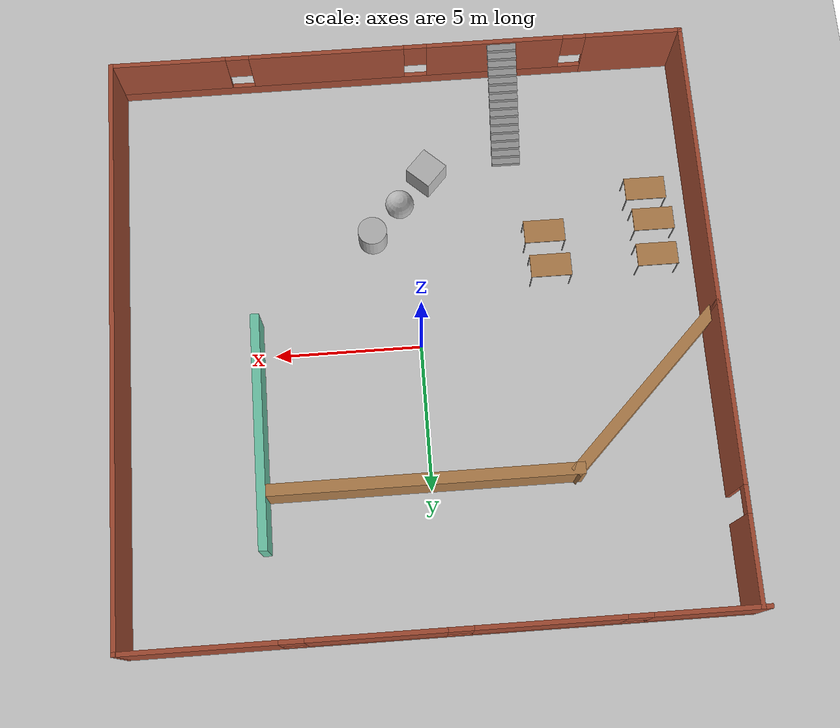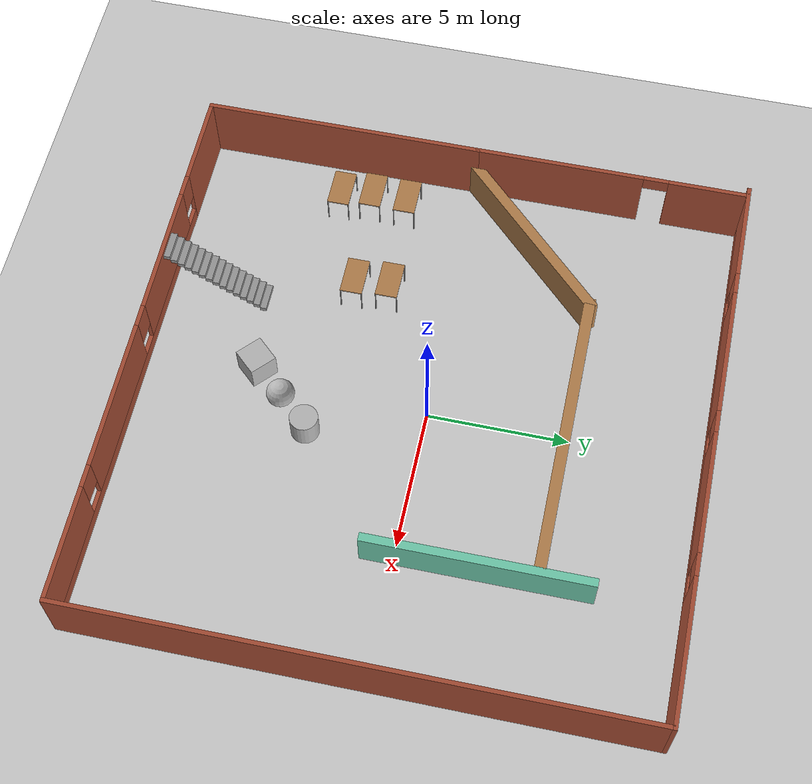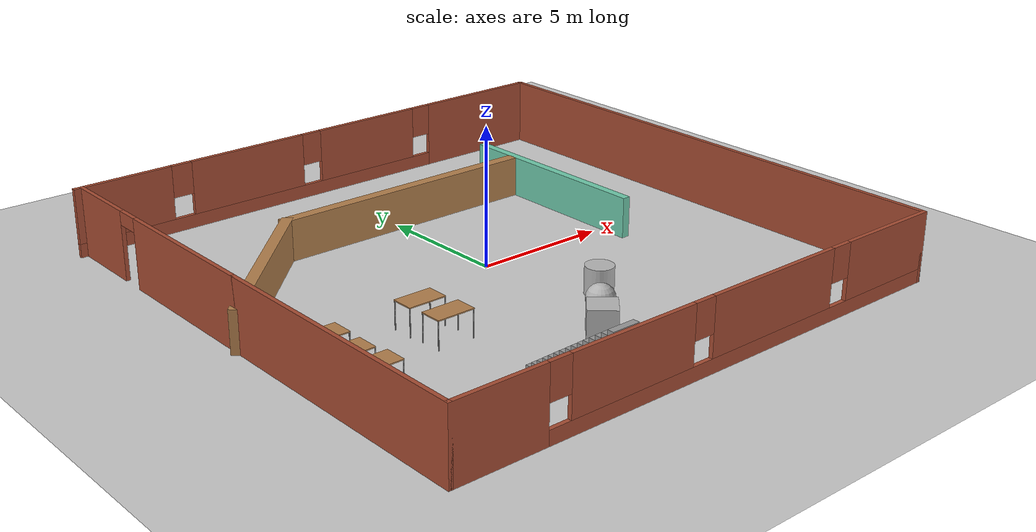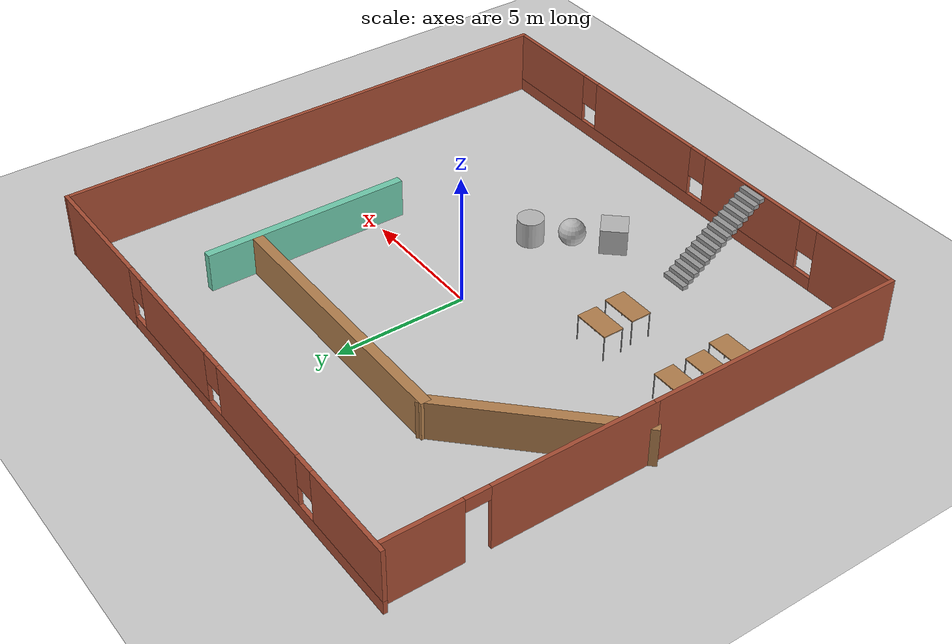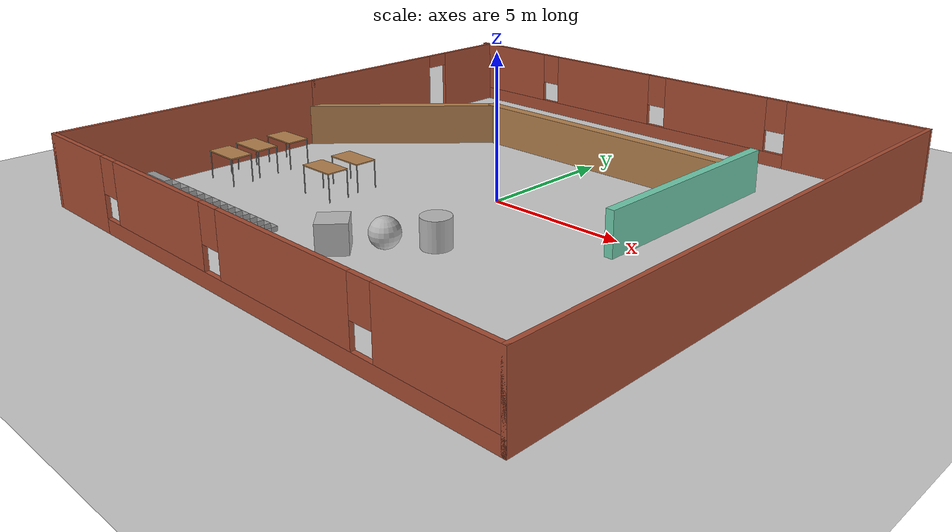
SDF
<sdf version="1.6">
 <world name="default">
  <light name="sun" type="directional">
   <pose>0 0 10 0 -0 0</pose>
   <diffuse>0.8 0.8 0.8 1</diffuse>
   <specular>0.1 0.1 0.1 1</specular>
   <attenuation>
    <range>1000</range>
    <constant>0.9</constant>
    <linear>0.01</linear>
    <quadratic>0.001</quadratic>
   </attenuation>
   <direction>-0.5 0.5 -1</direction>
  </light>
  <model name="ground_plane">
   <static>1</static>
   <link name="link">
    <collision name="collision">
     <geometry><plane><normal>0 0 1</normal><size>100 100</size></plane></geometry>
     <surface><friction><ode><mu>100</mu><mu2>50</mu2></ode></friction></surface>
    </collision>
    <visual name="visual">
     <cast_shadows>0</cast_shadows>
     <geometry><plane><normal>0 0 1</normal><size>100 100</size></plane></geometry>
     <material>
      <script><uri>file://media/materials/scripts/gazebo.material</uri><name>Gazebo/Grey</name></script>
     </material>
    </visual>
   </link>
  </model>
  <gravity>0 0 -9.8</gravity>
  <magnetic_field>6e-06 2.3e-05 -4.2e-05</magnetic_field>
  <atmosphere type="adiabatic"/>
  <physics name="default_physics" default="0" type="ode">
   <max_step_size>0.001</max_step_size>
   <real_time_factor>1</real_time_factor>
   <real_time_update_rate>1000</real_time_update_rate>
  </physics>
  <scene><ambient>0.4 0.4 0.4 1</ambient><background>0.7 0.7 0.7 1</background><shadows>1</shadows></scene>
  <spherical_coordinates>
   <surface_model>EARTH_WGS84</surface_model>
   <latitude_deg>0</latitude_deg>
   <longitude_deg>0</longitude_deg>
   <elevation>0</elevation>
   <heading_deg>0</heading_deg>
  </spherical_coordinates>
  <model name="my_house">
   <pose>0.008924 -0.236598 0 0 -0 0</pose>
   <link name="Stairs_1">
    <visual name="Stairs_1_Visual_0">
     <pose>-3.52265 -6.42087 0.083333 0 -0 0</pose>
     <geometry><box><size>1 0.233333 0.166667</size></box></geometry>
     <material>
      <script><uri>file://media/materials/scripts/gazebo.material</uri><name>Gazebo/Grey</name></script>
      <ambient>1 1 1 1</ambient>
     </material>
     <meta><layer>0</layer></meta>
    </visual>
    <collision name="Stairs_1_Collision_0">
     <geometry><box><size>1 0.233333 0.166667</size></box></geometry>
     <pose>-3.52265 -6.42087 0.083333 0 -0 0</pose>
    </collision>
    <visual name="Stairs_1_Visual_1">
     <pose>-3.52265 -6.6542 0.25 0 -0 0</pose>
     <geometry><box><size>1 0.233333 0.166667</size></box></geometry>
     <material>
      <script><uri>file://media/materials/scripts/gazebo.material</uri><name>Gazebo/Grey</name></script>
      <ambient>1 1 1 1</ambient>
     </material>
     <meta><layer>0</layer></meta>
    </visual>
    <collision name="Stairs_1_Collision_1">
     <geometry><box><size>1 0.233333 0.166667</size></box></geometry>
     <pose>-3.52265 -6.6542 0.25 0 -0 0</pose>
    </collision>
    <visual name="Stairs_1_Visual_2">
     <pose>-3.52265 -6.88753 0.416667 0 -0 0</pose>
     <geometry><box><size>1 0.233333 0.166667</size></box></geometry>
     <material>
      <script><uri>file://media/materials/scripts/gazebo.material</uri><name>Gazebo/Grey</name></script>
      <ambient>1 1 1 1</ambient>
     </material>
     <meta><layer>0</layer></meta>
    </visual>
    <collision name="Stairs_1_Collision_2">
     <geometry><box><size>1 0.233333 0.166667</size></box></geometry>
     <pose>-3.52265 -6.88753 0.416667 0 -0 0</pose>
    </collision>
    <visual name="Stairs_1_Visual_3">
     <pose>-3.52265 -7.12087 0.583333 0 -0 0</pose>
     <geometry><box><size>1 0.233333 0.166667</size></box></geometry>
     <material>
      <script><uri>file://media/materials/scripts/gazebo.material</uri><name>Gazebo/Grey</name></script>
      <ambient>1 1 1 1</ambient>
     </material>
     <meta><layer>0</layer></meta>
    </visual>
    <collision name="Stairs_1_Collision_3">
     <geometry><box><size>1 0.233333 0.166667</size></box></geometry>
     <pose>-3.52265 -7.12087 0.583333 0 -0 0</pose>
    </collision>
    <visual name="Stairs_1_Visual_4">
     <pose>-3.52265 -7.3542 0.75 0 -0 0</pose>
     <geometry><box><size>1 0.233333 0.166667</size></box></geometry>
     <material>
      <script><uri>file://media/materials/scripts/gazebo.material</uri><name>Gazebo/Grey</name></script>
      <ambient>1 1 1 1</ambient>
     </material>
     <meta><layer>0</layer></meta>
    </visual>
    <collision name="Stairs_1_Collision_4">
     <geometry><box><size>1 0.233333 0.166667</size></box></geometry>
     <pose>-3.52265 -7.3542 0.75 0 -0 0</pose>
    </collision>
    <visual name="Stairs_1_Visual_5">
     <pose>-3.52265 -7.58753 0.916667 0 -0 0</pose>
     <geometry><box><size>1 0.233333 0.166667</size></box></geometry>
     <material>
      <script><uri>file://media/materials/scripts/gazebo.material</uri><name>Gazebo/Grey</name></script>
      <ambient>1 1 1 1</ambient>
     </material>
     <meta><layer>0</layer></meta>
    </visual>
    <collision name="Stairs_1_Collision_5">
     <geometry><box><size>1 0.233333 0.166667</size></box></geometry>
     <pose>-3.52265 -7.58753 0.916667 0 -0 0</pose>
    </collision>
    <visual name="Stairs_1_Visual_6">
     <pose>-3.52265 -7.82087 1.08333 0 -0 0</pose>
     <geometry><box><size>1 0.233333 0.166667</size></box></geometry>
     <material>
      <script><uri>file://media/materials/scripts/gazebo.material</uri><name>Gazebo/Grey</name></script>
      <ambient>1 1 1 1</ambient>
     </material>
     <meta><layer>0</layer></meta>
    </visual>
    <collision name="Stairs_1_Collision_6">
     <geometry><box><size>1 0.233333 0.166667</size></box></geometry>
     <pose>-3.52265 -7.82087 1.08333 0 -0 0</pose>
    </collision>
    <visual name="Stairs_1_Visual_7">
     <pose>-3.52265 -8.0542 1.25 0 -0 0</pose>
     <geometry><box><size>1 0.233333 0.166667</size></box></geometry>
     <material>
      <script><uri>file://media/materials/scripts/gazebo.material</uri><name>Gazebo/Grey</name></script>
      <ambient>1 1 1 1</ambient>
     </material>
     <meta><layer>0</layer></meta>
    </visual>
    <collision name="Stairs_1_Collision_7">
     <geometry><box><size>1 0.233333 0.166667</size></box></geometry>
     <pose>-3.52265 -8.0542 1.25 0 -0 0</pose>
    </collision>
    <visual name="Stairs_1_Visual_8">
     <pose>-3.52265 -8.28753 1.41667 0 -0 0</pose>
     <geometry><box><size>1 0.233333 0.166667</size></box></geometry>
     <material>
      <script><uri>file://media/materials/scripts/gazebo.material</uri><name>Gazebo/Grey</name></script>
      <ambient>1 1 1 1</ambient>
     </material>
     <meta><layer>0</layer></meta>
    </visual>
    <collision name="Stairs_1_Collision_8">
     <geometry><box><size>1 0.233333 0.166667</size></box></geometry>
     <pose>-3.52265 -8.28753 1.41667 0 -0 0</pose>
    </collision>
    <visual name="Stairs_1_Visual_9">
     <pose>-3.52265 -8.52087 1.58333 0 -0 0</pose>
     <geometry><box><size>1 0.233333 0.166667</size></box></geometry>
     <material>
      <script><uri>file://media/materials/scripts/gazebo.material</uri><name>Gazebo/Grey</name></script>
      <ambient>1 1 1 1</ambient>
     </material>
     <meta><layer>0</layer></meta>
    </visual>
    <collision name="Stairs_1_Collision_9">
     <geometry><box><size>1 0.233333 0.166667</size></box></geometry>
     <pose>-3.52265 -8.52087 1.58333 0 -0 0</pose>
    </collision>
    <visual name="Stairs_1_Visual_10">
     <pose>-3.52265 -8.7542 1.75 0 -0 0</pose>
     <geometry><box><size>1 0.233333 0.166667</size></box></geometry>
     <material>
      <script><uri>file://media/materials/scripts/gazebo.material</uri><name>Gazebo/Grey</name></script>
      <ambient>1 1 1 1</ambient>
     </material>
     <meta><layer>0</layer></meta>
    </visual>
    <collision name="Stairs_1_Collision_10">
     <geometry><box><size>1 0.233333 0.166667</size></box></geometry>
     <pose>-3.52265 -8.7542 1.75 0 -0 0</pose>
    </collision>
    <visual name="Stairs_1_Visual_11">
     <pose>-3.52265 -8.98753 1.91667 0 -0 0</pose>
     <geometry><box><size>1 0.233333 0.166667</size></box></geometry>
     <material>
      <script><uri>file://media/materials/scripts/gazebo.material</uri><name>Gazebo/Grey</name></script>
      <ambient>1 1 1 1</ambient>
     </material>
     <meta><layer>0</layer></meta>
    </visual>
    <collision name="Stairs_1_Collision_11">
     <geometry><box><size>1 0.233333 0.166667</size></box></geometry>
     <pose>-3.52265 -8.98753 1.91667 0 -0 0</pose>
    </collision>
    <visual name="Stairs_1_Visual_12">
     <pose>-3.52265 -9.22086 2.08333 0 -0 0</pose>
     <geometry><box><size>1 0.233333 0.166667</size></box></geometry>
     <material>
      <script><uri>file://media/materials/scripts/gazebo.material</uri><name>Gazebo/Grey</name></script>
      <ambient>1 1 1 1</ambient>
     </material>
     <meta><layer>0</layer></meta>
    </visual>
    <collision name="Stairs_1_Collision_12">
     <geometry><box><size>1 0.233333 0.166667</size></box></geometry>
     <pose>-3.52265 -9.22086 2.08333 0 -0 0</pose>
    </collision>
    <visual name="Stairs_1_Visual_13">
     <pose>-3.52265 -9.4542 2.25 0 -0 0</pose>
     <geometry><box><size>1 0.233333 0.166667</size></box></geometry>
     <material>
      <script><uri>file://media/materials/scripts/gazebo.material</uri><name>Gazebo/Grey</name></script>
      <ambient>1 1 1 1</ambient>
     </material>
     <meta><layer>0</layer></meta>
    </visual>
    <collision name="Stairs_1_Collision_13">
     <geometry><box><size>1 0.233333 0.166667</size></box></geometry>
     <pose>-3.52265 -9.4542 2.25 0 -0 0</pose>
    </collision>
    <visual name="Stairs_1_Visual_14">
     <pose>-3.52265 -9.68753 2.41667 0 -0 0</pose>
     <geometry><box><size>1 0.233333 0.166667</size></box></geometry>
     <material>
      <script><uri>file://media/materials/scripts/gazebo.material</uri><name>Gazebo/Grey</name></script>
      <ambient>1 1 1 1</ambient>
     </material>
     <meta><layer>0</layer></meta>
    </visual>
    <collision name="Stairs_1_Collision_14">
     <geometry><box><size>1 0.233333 0.166667</size></box></geometry>
     <pose>-3.52265 -9.68753 2.41667 0 -0 0</pose>
    </collision>
   </link>
   <link name="Wall_14">
    <collision name="Wall_14_Collision">
     <geometry><box><size>20 0.15 2.5</size></box></geometry>
     <pose>0 0 1.25 0 -0 0</pose>
    </collision>
    <visual name="Wall_14_Visual">
     <pose>0 0 1.25 0 -0 0</pose>
     <geometry><box><size>20 0.15 2.5</size></box></geometry>
     <material>
      <script><uri>file://media/materials/scripts/gazebo.material</uri><name>Gazebo/Bricks</name></script>
      <ambient>1 1 1 1</ambient>
     </material>
     <meta><layer>0</layer></meta>
    </visual>
    <pose>10.05 0 0 0 -0 1.5708</pose>
   </link>
   <link name="Wall_15">
    <pose>-1e-06 9.925 0 0 -0 3.14159</pose>
    <visual name="Wall_15_Visual_0">
     <pose>-7.59411 0 1.25 0 -0 0</pose>
     <geometry><box><size>5.06177 0.15 2.5</size></box></geometry>
     <material>
      <script><uri>file://media/materials/scripts/gazebo.material</uri><name>Gazebo/Bricks</name></script>
      <ambient>1 1 1 1</ambient>
     </material>
     <meta><layer>0</layer></meta>
    </visual>
    <collision name="Wall_15_Collision_0">
     <geometry><box><size>5.06177 0.15 2.5</size></box></geometry>
     <pose>-7.59411 0 1.25 0 -0 0</pose>
    </collision>
    <visual name="Wall_15_Visual_1">
     <pose>2.53089 0 0.25 0 -0 0</pose>
     <geometry><box><size>15.1882 0.15 0.5</size></box></geometry>
     <material>
      <script><uri>file://media/materials/scripts/gazebo.material</uri><name>Gazebo/Bricks</name></script>
      <ambient>1 1 1 1</ambient>
     </material>
     <meta><layer>0</layer></meta>
    </visual>
    <collision name="Wall_15_Collision_1">
     <geometry><box><size>15.1882 0.15 0.5</size></box></geometry>
     <pose>2.53089 0 0.25 0 -0 0</pose>
    </collision>
    <visual name="Wall_15_Visual_2">
     <pose>-2.06836 0 1.5 0 -0 0</pose>
     <geometry><box><size>4.38974 0.15 2</size></box></geometry>
     <material>
      <script><uri>file://media/materials/scripts/gazebo.material</uri><name>Gazebo/Bricks</name></script>
      <ambient>1 1 1 1</ambient>
     </material>
     <meta><layer>0</layer></meta>
    </visual>
    <collision name="Wall_15_Collision_2">
     <geometry><box><size>4.38974 0.15 2</size></box></geometry>
     <pose>-2.06836 0 1.5 0 -0 0</pose>
    </collision>
    <visual name="Wall_15_Visual_3">
     <pose>3.28189 0 1.5 0 -0 0</pose>
     <geometry><box><size>4.71076 0.15 2</size></box></geometry>
     <material>
      <script><uri>file://media/materials/scripts/gazebo.material</uri><name>Gazebo/Bricks</name></script>
      <ambient>1 1 1 1</ambient>
     </material>
     <meta><layer>0</layer></meta>
    </visual>
    <collision name="Wall_15_Collision_3">
     <geometry><box><size>4.71076 0.15 2</size></box></geometry>
     <pose>3.28189 0 1.5 0 -0 0</pose>
    </collision>
    <visual name="Wall_15_Visual_4">
     <pose>8.28114 0 1.5 0 -0 0</pose>
     <geometry><box><size>3.68773 0.15 2</size></box></geometry>
     <material>
      <script><uri>file://media/materials/scripts/gazebo.material</uri><name>Gazebo/Bricks</name></script>
      <ambient>1 1 1 1</ambient>
     </material>
     <meta><layer>0</layer></meta>
    </visual>
    <collision name="Wall_15_Collision_4">
     <geometry><box><size>3.68773 0.15 2</size></box></geometry>
     <pose>8.28114 0 1.5 0 -0 0</pose>
    </collision>
    <visual name="Wall_15_Visual_5">
     <pose>-4.66323 0 1.9 0 -0 0</pose>
     <geometry><box><size>0.8 0.15 1.2</size></box></geometry>
     <material>
      <script><uri>file://media/materials/scripts/gazebo.material</uri><name>Gazebo/Bricks</name></script>
      <ambient>1 1 1 1</ambient>
     </material>
     <meta><layer>0</layer></meta>
    </visual>
    <collision name="Wall_15_Collision_5">
     <geometry><box><size>0.8 0.15 1.2</size></box></geometry>
     <pose>-4.66323 0 1.9 0 -0 0</pose>
    </collision>
    <visual name="Wall_15_Visual_6">
     <pose>0.526515 0 1.9 0 -0 0</pose>
     <geometry><box><size>0.8 0.15 1.2</size></box></geometry>
     <material>
      <script><uri>file://media/materials/scripts/gazebo.material</uri><name>Gazebo/Bricks</name></script>
      <ambient>1 1 1 1</ambient>
     </material>
     <meta><layer>0</layer></meta>
    </visual>
    <collision name="Wall_15_Collision_6">
     <geometry><box><size>0.8 0.15 1.2</size></box></geometry>
     <pose>0.526515 0 1.9 0 -0 0</pose>
    </collision>
    <visual name="Wall_15_Visual_7">
     <pose>6.03727 0 1.9 0 -0 0</pose>
     <geometry><box><size>0.8 0.15 1.2</size></box></geometry>
     <material>
      <script><uri>file://media/materials/scripts/gazebo.material</uri><name>Gazebo/Bricks</name></script>
      <ambient>1 1 1 1</ambient>
     </material>
     <meta><layer>0</layer></meta>
    </visual>
    <collision name="Wall_15_Collision_7">
     <geometry><box><size>0.8 0.15 1.2</size></box></geometry>
     <pose>6.03727 0 1.9 0 -0 0</pose>
    </collision>
   </link>
   <link name="Wall_17">
    <pose>-9.8 5 0 0 -0 1.5708</pose>
    <visual name="Wall_17_Visual_0">
     <pose>-1.92226 0 1.25 0 -0 0</pose>
     <geometry><box><size>6.15549 0.15 2.5</size></box></geometry>
     <material>
      <script><uri>file://media/materials/scripts/gazebo.material</uri><name>Gazebo/Bricks</name></script>
      <ambient>1 1 1 1</ambient>
     </material>
     <meta><layer>0</layer></meta>
    </visual>
    <collision name="Wall_17_Collision_0">
     <geometry><box><size>6.15549 0.15 2.5</size></box></geometry>
     <pose>-1.92226 0 1.25 0 -0 0</pose>
    </collision>
    <visual name="Wall_17_Visual_1">
     <pose>3.52774 0 1.25 0 -0 0</pose>
     <geometry><box><size>2.94451 0.15 2.5</size></box></geometry>
     <material>
      <script><uri>file://media/materials/scripts/gazebo.material</uri><name>Gazebo/Bricks</name></script>
      <ambient>1 1 1 1</ambient>
     </material>
     <meta><layer>0</layer></meta>
    </visual>
    <collision name="Wall_17_Collision_1">
     <geometry><box><size>2.94451 0.15 2.5</size></box></geometry>
     <pose>3.52774 0 1.25 0 -0 0</pose>
    </collision>
    <visual name="Wall_17_Visual_2">
     <pose>1.60549 0 2.25 0 -0 0</pose>
     <geometry><box><size>0.9 0.15 0.5</size></box></geometry>
     <material>
      <script><uri>file://media/materials/scripts/gazebo.material</uri><name>Gazebo/Bricks</name></script>
      <ambient>1 1 1 1</ambient>
     </material>
     <meta><layer>0</layer></meta>
    </visual>
    <collision name="Wall_17_Collision_2">
     <geometry><box><size>0.9 0.15 0.5</size></box></geometry>
     <pose>1.60549 0 2.25 0 -0 0</pose>
    </collision>
   </link>
   <link name="Wall_21">
    <collision name="Wall_21_Collision">
     <geometry><box><size>7.9 0.3 1.5</size></box></geometry>
     <pose>0 0 0.75 0 -0 0</pose>
    </collision>
    <visual name="Wall_21_Visual">
     <pose>0 0 0.75 0 -0 0</pose>
     <geometry><box><size>7.9 0.3 1.5</size></box></geometry>
     <material>
      <script><uri>file://media/materials/scripts/gazebo.material</uri><name>Gazebo/Grey</name></script>
      <ambient>0.435294 0.796078 0.67451 1</ambient>
     </material>
     <meta><layer>0</layer></meta>
    </visual>
    <pose>5.522 3.051 0 0 0 -1.5708</pose>
   </link>
   <link name="Wall_3">
    <collision name="Wall_3_Collision">
     <geometry><box><size>10.4 0.4 1.5</size></box></geometry>
     <pose>0 0 0.75 0 -0 0</pose>
    </collision>
    <visual name="Wall_3_Visual">
     <pose>0 0 0.75 0 -0 0</pose>
     <geometry><box><size>10.4 0.4 1.5</size></box></geometry>
     <material>
      <script><uri>file://media/materials/scripts/gazebo.material</uri><name>Gazebo/Wood</name></script>
      <ambient>1 1 1 1</ambient>
     </material>
     <meta><layer>0</layer></meta>
    </visual>
    <pose>0.199999 5.075 0 0 -0 3.14159</pose>
   </link>
   <link name="Wall_5">
    <collision name="Wall_5_Collision">
     <geometry><box><size>7.47107 0.4 1.5</size></box></geometry>
     <pose>0 0 0.75 0 -0 0</pose>
    </collision>
    <visual name="Wall_5_Visual">
     <pose>0 0 0.75 0 -0 0</pose>
     <geometry><box><size>7.47107 0.4 1.5</size></box></geometry>
     <material>
      <script><uri>file://media/materials/scripts/gazebo.material</uri><name>Gazebo/Wood</name></script>
      <ambient>1 1 1 1</ambient>
     </material>
     <meta><layer>0</layer></meta>
    </visual>
    <pose>-7.3 2.575 0 0 0 -2.35619</pose>
   </link>
   <link name="Wall_7">
    <collision name="Wall_7_Collision">
     <geometry><box><size>10.15 0.15 2.5</size></box></geometry>
     <pose>0 0 1.25 0 -0 0</pose>
    </collision>
    <visual name="Wall_7_Visual">
     <pose>0 0 1.25 0 -0 0</pose>
     <geometry><box><size>10.15 0.15 2.5</size></box></geometry>
     <material>
      <script><uri>file://media/materials/scripts/gazebo.material</uri><name>Gazebo/Bricks</name></script>
      <ambient>1 1 1 1</ambient>
     </material>
     <meta><layer>0</layer></meta>
    </visual>
    <pose>-9.8 -4.925 0 0 0 -1.5708</pose>
   </link>
   <link name="Wall_9">
    <pose>0.124999 -9.925 0 0 -0 0</pose>
    <visual name="Wall_9_Visual_0">
     <pose>-8.30789 0 1.25 0 -0 0</pose>
     <geometry><box><size>3.38422 0.15 2.5</size></box></geometry>
     <material>
      <script><uri>file://media/materials/scripts/gazebo.material</uri><name>Gazebo/Bricks</name></script>
      <ambient>1 1 1 1</ambient>
     </material>
     <meta><layer>0</layer></meta>
    </visual>
    <collision name="Wall_9_Collision_0">
     <geometry><box><size>3.38422 0.15 2.5</size></box></geometry>
     <pose>-8.30789 0 1.25 0 -0 0</pose>
    </collision>
    <visual name="Wall_9_Visual_1">
     <pose>1.69211 0 0.25 0 -0 0</pose>
     <geometry><box><size>16.6158 0.15 0.5</size></box></geometry>
     <material>
      <script><uri>file://media/materials/scripts/gazebo.material</uri><name>Gazebo/Bricks</name></script>
      <ambient>1 1 1 1</ambient>
     </material>
     <meta><layer>0</layer></meta>
    </visual>
    <collision name="Wall_9_Collision_1">
     <geometry><box><size>16.6158 0.15 0.5</size></box></geometry>
     <pose>1.69211 0 0.25 0 -0 0</pose>
    </collision>
    <visual name="Wall_9_Visual_2">
     <pose>-3.43364 0 1.5 0 -0 0</pose>
     <geometry><box><size>4.76426 0.15 2</size></box></geometry>
     <material>
      <script><uri>file://media/materials/scripts/gazebo.material</uri><name>Gazebo/Bricks</name></script>
      <ambient>1 1 1 1</ambient>
     </material>
     <meta><layer>0</layer></meta>
    </visual>
    <collision name="Wall_9_Collision_2">
     <geometry><box><size>4.76426 0.15 2</size></box></geometry>
     <pose>-3.43364 0 1.5 0 -0 0</pose>
    </collision>
    <visual name="Wall_9_Visual_3">
     <pose>2.45163 0 1.5 0 -0 0</pose>
     <geometry><box><size>5.40629 0.15 2</size></box></geometry>
     <material>
      <script><uri>file://media/materials/scripts/gazebo.material</uri><name>Gazebo/Bricks</name></script>
      <ambient>1 1 1 1</ambient>
     </material>
     <meta><layer>0</layer></meta>
    </visual>
    <collision name="Wall_9_Collision_3">
     <geometry><box><size>5.40629 0.15 2</size></box></geometry>
     <pose>2.45163 0 1.5 0 -0 0</pose>
    </collision>
    <visual name="Wall_9_Visual_4">
     <pose>7.97739 0 1.5 0 -0 0</pose>
     <geometry><box><size>4.04523 0.15 2</size></box></geometry>
     <material>
      <script><uri>file://media/materials/scripts/gazebo.material</uri><name>Gazebo/Bricks</name></script>
      <ambient>1 1 1 1</ambient>
     </material>
     <meta><layer>0</layer></meta>
    </visual>
    <collision name="Wall_9_Collision_4">
     <geometry><box><size>4.04523 0.15 2</size></box></geometry>
     <pose>7.97739 0 1.5 0 -0 0</pose>
    </collision>
    <visual name="Wall_9_Visual_5">
     <pose>-6.21577 0 1.9 0 -0 0</pose>
     <geometry><box><size>0.8 0.15 1.2</size></box></geometry>
     <material>
      <script><uri>file://media/materials/scripts/gazebo.material</uri><name>Gazebo/Bricks</name></script>
      <ambient>1 1 1 1</ambient>
     </material>
     <meta><layer>0</layer></meta>
    </visual>
    <collision name="Wall_9_Collision_5">
     <geometry><box><size>0.8 0.15 1.2</size></box></geometry>
     <pose>-6.21577 0 1.9 0 -0 0</pose>
    </collision>
    <visual name="Wall_9_Visual_6">
     <pose>-0.651515 0 1.9 0 -0 0</pose>
     <geometry><box><size>0.8 0.15 1.2</size></box></geometry>
     <material>
      <script><uri>file://media/materials/scripts/gazebo.material</uri><name>Gazebo/Bricks</name></script>
      <ambient>1 1 1 1</ambient>
     </material>
     <meta><layer>0</layer></meta>
    </visual>
    <collision name="Wall_9_Collision_6">
     <geometry><box><size>0.8 0.15 1.2</size></box></geometry>
     <pose>-0.651515 0 1.9 0 -0 0</pose>
    </collision>
    <visual name="Wall_9_Visual_7">
     <pose>5.55478 0 1.9 0 -0 0</pose>
     <geometry><box><size>0.8 0.15 1.2</size></box></geometry>
     <material>
      <script><uri>file://media/materials/scripts/gazebo.material</uri><name>Gazebo/Bricks</name></script>
      <ambient>1 1 1 1</ambient>
     </material>
     <meta><layer>0</layer></meta>
    </visual>
    <collision name="Wall_9_Collision_7">
     <geometry><box><size>0.8 0.15 1.2</size></box></geometry>
     <pose>5.55478 0 1.9 0 -0 0</pose>
    </collision>
   </link>
   <static>1</static>
  </model>
  <model name="textured_shapes">
   <pose>0.395897 -5.11976 0.5 0 0 -0.742374</pose>
   <link name="box">
    <pose>0 -1.5 0 0 -0 0</pose>
    <collision name="collision"><geometry><box><size>1 1 1</size></box></geometry></collision>
    <visual name="visual">
     <geometry><box><size>1 1 1</size></box></geometry>
     <material>
      <script>
       <uri>model://textured_shapes/materials/scripts</uri>
       <uri>model://textured_shapes/materials/textures</uri>
       <name>TexturedShape/Squares</name>
      </script>
     </material>
    </visual>
    <inertial>
     <inertia><ixx>1</ixx><ixy>0</ixy><ixz>0</ixz><iyy>1</iyy><iyz>0</iyz><izz>1</izz></inertia>
     <mass>1</mass>
    </inertial>
   </link>
   <link name="sphere">
    <collision name="collision"><geometry><sphere><radius>0.5</radius></sphere></geometry></collision>
    <visual name="visual">
     <geometry><sphere><radius>0.5</radius></sphere></geometry>
     <material>
      <script>
       <uri>model://textured_shapes/materials/scripts</uri>
       <uri>model://textured_shapes/materials/textures</uri>
       <name>TexturedShape/Squares</name>
      </script>
     </material>
    </visual>
    <inertial>
     <inertia><ixx>1</ixx><ixy>0</ixy><ixz>0</ixz><iyy>1</iyy><iyz>0</iyz><izz>1</izz></inertia>
     <mass>1</mass>
    </inertial>
   </link>
   <link name="cylinder">
    <pose>0 1.5 0 0 -0 0</pose>
    <collision name="collision">
     <geometry><cylinder><radius>0.5</radius><length>1</length></cylinder></geometry>
    </collision>
    <visual name="visual">
     <geometry><cylinder><radius>0.5</radius><length>1</length></cylinder></geometry>
     <material>
      <script>
       <uri>model://textured_shapes/materials/scripts</uri>
       <uri>model://textured_shapes/materials/textures</uri>
       <name>TexturedShape/Squares</name>
      </script>
     </material>
    </visual>
    <inertial>
     <inertia><ixx>1</ixx><ixy>0</ixy><ixz>0</ixz><iyy>1</iyy><iyz>0</iyz><izz>1</izz></inertia>
     <mass>1</mass>
    </inertial>
   </link>
  </model>
  <model name="table">
   <static>0</static>
   <link name="link">
    <collision name="surface">
     <pose>0 0 1 0 -0 0</pose>
     <geometry><box><size>1.5 0.8 0.03</size></box></geometry>
     <surface><friction><ode><mu>0.6</mu><mu2>0.6</mu2></ode></friction></surface>
    </collision>
    <visual name="visual1">
     <pose>0 0 1 0 -0 0</pose>
     <geometry><box><size>1.4 0.8 0.04</size></box></geometry>
     <material>
      <script><uri>file://media/materials/scripts/gazebo.material</uri><name>Gazebo/Wood</name></script>
     </material>
    </visual>
    <collision name="front_left_leg">
     <pose>0.68 0.38 0.5 0 -0 0</pose>
     <geometry><cylinder><radius>0.02</radius><length>1</length></cylinder></geometry>
    </collision>
    <visual name="front_left_leg">
     <pose>0.68 0.38 0.5 0 -0 0</pose>
     <geometry><cylinder><radius>0.02</radius><length>1</length></cylinder></geometry>
     <material>
      <script><uri>file://media/materials/scripts/gazebo.material</uri><name>Gazebo/Grey</name></script>
     </material>
    </visual>
    <collision name="front_right_leg">
     <pose>0.68 -0.38 0.5 0 -0 0</pose>
     <geometry><cylinder><radius>0.02</radius><length>1</length></cylinder></geometry>
    </collision>
    <visual name="front_right_leg">
     <pose>0.68 -0.38 0.5 0 -0 0</pose>
     <geometry><cylinder><radius>0.02</radius><length>1</length></cylinder></geometry>
     <material>
      <script><uri>file://media/materials/scripts/gazebo.material</uri><name>Gazebo/Grey</name></script>
     </material>
    </visual>
    <collision name="back_right_leg">
     <pose>-0.68 -0.38 0.5 0 -0 0</pose>
     <geometry><cylinder><radius>0.02</radius><length>1</length></cylinder></geometry>
    </collision>
    <visual name="back_right_leg">
     <pose>-0.68 -0.38 0.5 0 -0 0</pose>
     <geometry><cylinder><radius>0.02</radius><length>1</length></cylinder></geometry>
     <material>
      <script><uri>file://media/materials/scripts/gazebo.material</uri><name>Gazebo/Grey</name></script>
     </material>
    </visual>
    <collision name="back_left_leg">
     <pose>-0.68 0.38 0.5 0 -0 0</pose>
     <geometry><cylinder><radius>0.02</radius><length>1</length></cylinder></geometry>
    </collision>
    <visual name="back_left_leg">
     <pose>-0.68 0.38 0.5 0 -0 0</pose>
     <geometry><cylinder><radius>0.02</radius><length>1</length></cylinder></geometry>
     <material>
      <script><uri>file://media/materials/scripts/gazebo.material</uri><name>Gazebo/Grey</name></script>
     </material>
    </visual>
    <inertial>
     <inertia><ixx>1</ixx><ixy>0</ixy><ixz>0</ixz><iyy>1</iyy><iyz>0</iyz><izz>1</izz></inertia>
     <mass>1</mass>
    </inertial>
   </link>
   <pose>-8.30425 -2.46549 -1e-06 0 1e-06 0</pose>
  </model>
  <model name="table_0">
   <static>0</static>
   <link name="link">
    <collision name="surface">
     <pose>0 0 1 0 -0 0</pose>
     <geometry><box><size>1.5 0.8 0.03</size></box></geometry>
     <surface><friction><ode><mu>0.6</mu><mu2>0.6</mu2></ode></friction></surface>
    </collision>
    <visual name="visual1">
     <pose>0 0 1 0 -0 0</pose>
     <geometry><box><size>1.4 0.8 0.04</size></box></geometry>
     <material>
      <script><uri>file://media/materials/scripts/gazebo.material</uri><name>Gazebo/Wood</name></script>
     </material>
    </visual>
    <collision name="front_left_leg">
     <pose>0.68 0.38 0.5 0 -0 0</pose>
     <geometry><cylinder><radius>0.02</radius><length>1</length></cylinder></geometry>
    </collision>
    <visual name="front_left_leg">
     <pose>0.68 0.38 0.5 0 -0 0</pose>
     <geometry><cylinder><radius>0.02</radius><length>1</length></cylinder></geometry>
     <material>
      <script><uri>file://media/materials/scripts/gazebo.material</uri><name>Gazebo/Grey</name></script>
     </material>
    </visual>
    <collision name="front_right_leg">
     <pose>0.68 -0.38 0.5 0 -0 0</pose>
     <geometry><cylinder><radius>0.02</radius><length>1</length></cylinder></geometry>
    </collision>
    <visual name="front_right_leg">
     <pose>0.68 -0.38 0.5 0 -0 0</pose>
     <geometry><cylinder><radius>0.02</radius><length>1</length></cylinder></geometry>
     <material>
      <script><uri>file://media/materials/scripts/gazebo.material</uri><name>Gazebo/Grey</name></script>
     </material>
    </visual>
    <collision name="back_right_leg">
     <pose>-0.68 -0.38 0.5 0 -0 0</pose>
     <geometry><cylinder><radius>0.02</radius><length>1</length></cylinder></geometry>
    </collision>
    <visual name="back_right_leg">
     <pose>-0.68 -0.38 0.5 0 -0 0</pose>
     <geometry><cylinder><radius>0.02</radius><length>1</length></cylinder></geometry>
     <material>
      <script><uri>file://media/materials/scripts/gazebo.material</uri><name>Gazebo/Grey</name></script>
     </material>
    </visual>
    <collision name="back_left_leg">
     <pose>-0.68 0.38 0.5 0 -0 0</pose>
     <geometry><cylinder><radius>0.02</radius><length>1</length></cylinder></geometry>
    </collision>
    <visual name="back_left_leg">
     <pose>-0.68 0.38 0.5 0 -0 0</pose>
     <geometry><cylinder><radius>0.02</radius><length>1</length></cylinder></geometry>
     <material>
      <script><uri>file://media/materials/scripts/gazebo.material</uri><name>Gazebo/Grey</name></script>
     </material>
    </visual>
    <inertial>
     <inertia><ixx>1</ixx><ixy>0</ixy><ixz>0</ixz><iyy>1</iyy><iyz>0</iyz><izz>1</izz></inertia>
     <mass>1</mass>
    </inertial>
   </link>
   <pose>-8.32557 -3.75659 -1e-06 0 1e-06 0</pose>
  </model>
  <model name="table_1">
   <static>0</static>
   <link name="link">
    <collision name="surface">
     <pose>0 0 1 0 -0 0</pose>
     <geometry><box><size>1.5 0.8 0.03</size></box></geometry>
     <surface><friction><ode><mu>0.6</mu><mu2>0.6</mu2></ode></friction></surface>
    </collision>
    <visual name="visual1">
     <pose>0 0 1 0 -0 0</pose>
     <geometry><box><size>1.4 0.8 0.04</size></box></geometry>
     <material>
      <script><uri>file://media/materials/scripts/gazebo.material</uri><name>Gazebo/Wood</name></script>
     </material>
    </visual>
    <collision name="front_left_leg">
     <pose>0.68 0.38 0.5 0 -0 0</pose>
     <geometry><cylinder><radius>0.02</radius><length>1</length></cylinder></geometry>
    </collision>
    <visual name="front_left_leg">
     <pose>0.68 0.38 0.5 0 -0 0</pose>
     <geometry><cylinder><radius>0.02</radius><length>1</length></cylinder></geometry>
     <material>
      <script><uri>file://media/materials/scripts/gazebo.material</uri><name>Gazebo/Grey</name></script>
     </material>
    </visual>
    <collision name="front_right_leg">
     <pose>0.68 -0.38 0.5 0 -0 0</pose>
     <geometry><cylinder><radius>0.02</radius><length>1</length></cylinder></geometry>
    </collision>
    <visual name="front_right_leg">
     <pose>0.68 -0.38 0.5 0 -0 0</pose>
     <geometry><cylinder><radius>0.02</radius><length>1</length></cylinder></geometry>
     <material>
      <script><uri>file://media/materials/scripts/gazebo.material</uri><name>Gazebo/Grey</name></script>
     </material>
    </visual>
    <collision name="back_right_leg">
     <pose>-0.68 -0.38 0.5 0 -0 0</pose>
     <geometry><cylinder><radius>0.02</radius><length>1</length></cylinder></geometry>
    </collision>
    <visual name="back_right_leg">
     <pose>-0.68 -0.38 0.5 0 -0 0</pose>
     <geometry><cylinder><radius>0.02</radius><length>1</length></cylinder></geometry>
     <material>
      <script><uri>file://media/materials/scripts/gazebo.material</uri><name>Gazebo/Grey</name></script>
     </material>
    </visual>
    <collision name="back_left_leg">
     <pose>-0.68 0.38 0.5 0 -0 0</pose>
     <geometry><cylinder><radius>0.02</radius><length>1</length></cylinder></geometry>
    </collision>
    <visual name="back_left_leg">
     <pose>-0.68 0.38 0.5 0 -0 0</pose>
     <geometry><cylinder><radius>0.02</radius><length>1</length></cylinder></geometry>
     <material>
      <script><uri>file://media/materials/scripts/gazebo.material</uri><name>Gazebo/Grey</name></script>
     </material>
    </visual>
    <inertial>
     <inertia><ixx>1</ixx><ixy>0</ixy><ixz>0</ixz><iyy>1</iyy><iyz>0</iyz><izz>1</izz></inertia>
     <mass>1</mass>
    </inertial>
   </link>
   <pose>-8.17303 -4.90283 -1e-06 0 1e-06 0</pose>
  </model>
  <model name="table_2">
   <static>0</static>
   <link name="link">
    <collision name="surface">
     <pose>0 0 1 0 -0 0</pose>
     <geometry><box><size>1.5 0.8 0.03</size></box></geometry>
     <surface><friction><ode><mu>0.6</mu><mu2>0.6</mu2></ode></friction></surface>
    </collision>
    <visual name="visual1">
     <pose>0 0 1 0 -0 0</pose>
     <geometry><box><size>1.4 0.8 0.04</size></box></geometry>
     <material>
      <script><uri>file://media/materials/scripts/gazebo.material</uri><name>Gazebo/Wood</name></script>
     </material>
    </visual>
    <collision name="front_left_leg">
     <pose>0.68 0.38 0.5 0 -0 0</pose>
     <geometry><cylinder><radius>0.02</radius><length>1</length></cylinder></geometry>
    </collision>
    <visual name="front_left_leg">
     <pose>0.68 0.38 0.5 0 -0 0</pose>
     <geometry><cylinder><radius>0.02</radius><length>1</length></cylinder></geometry>
     <material>
      <script><uri>file://media/materials/scripts/gazebo.material</uri><name>Gazebo/Grey</name></script>
     </material>
    </visual>
    <collision name="front_right_leg">
     <pose>0.68 -0.38 0.5 0 -0 0</pose>
     <geometry><cylinder><radius>0.02</radius><length>1</length></cylinder></geometry>
    </collision>
    <visual name="front_right_leg">
     <pose>0.68 -0.38 0.5 0 -0 0</pose>
     <geometry><cylinder><radius>0.02</radius><length>1</length></cylinder></geometry>
     <material>
      <script><uri>file://media/materials/scripts/gazebo.material</uri><name>Gazebo/Grey</name></script>
     </material>
    </visual>
    <collision name="back_right_leg">
     <pose>-0.68 -0.38 0.5 0 -0 0</pose>
     <geometry><cylinder><radius>0.02</radius><length>1</length></cylinder></geometry>
    </collision>
    <visual name="back_right_leg">
     <pose>-0.68 -0.38 0.5 0 -0 0</pose>
     <geometry><cylinder><radius>0.02</radius><length>1</length></cylinder></geometry>
     <material>
      <script><uri>file://media/materials/scripts/gazebo.material</uri><name>Gazebo/Grey</name></script>
     </material>
    </visual>
    <collision name="back_left_leg">
     <pose>-0.68 0.38 0.5 0 -0 0</pose>
     <geometry><cylinder><radius>0.02</radius><length>1</length></cylinder></geometry>
    </collision>
    <visual name="back_left_leg">
     <pose>-0.68 0.38 0.5 0 -0 0</pose>
     <geometry><cylinder><radius>0.02</radius><length>1</length></cylinder></geometry>
     <material>
      <script><uri>file://media/materials/scripts/gazebo.material</uri><name>Gazebo/Grey</name></script>
     </material>
    </visual>
    <inertial>
     <inertia><ixx>1</ixx><ixy>0</ixy><ixz>0</ixz><iyy>1</iyy><iyz>0</iyz><izz>1</izz></inertia>
     <mass>1</mass>
    </inertial>
   </link>
   <pose>-4.6167 -2.31592 -1e-06 0 1e-06 0</pose>
  </model>
  <model name="table_3">
   <static>0</static>
   <link name="link">
    <collision name="surface">
     <pose>0 0 1 0 -0 0</pose>
     <geometry><box><size>1.5 0.8 0.03</size></box></geometry>
     <surface><friction><ode><mu>0.6</mu><mu2>0.6</mu2></ode></friction></surface>
    </collision>
    <visual name="visual1">
     <pose>0 0 1 0 -0 0</pose>
     <geometry><box><size>1.4 0.8 0.04</size></box></geometry>
     <material>
      <script><uri>file://media/materials/scripts/gazebo.material</uri><name>Gazebo/Wood</name></script>
     </material>
    </visual>
    <collision name="front_left_leg">
     <pose>0.68 0.38 0.5 0 -0 0</pose>
     <geometry><cylinder><radius>0.02</radius><length>1</length></cylinder></geometry>
    </collision>
    <visual name="front_left_leg">
     <pose>0.68 0.38 0.5 0 -0 0</pose>
     <geometry><cylinder><radius>0.02</radius><length>1</length></cylinder></geometry>
     <material>
      <script><uri>file://media/materials/scripts/gazebo.material</uri><name>Gazebo/Grey</name></script>
     </material>
    </visual>
    <collision name="front_right_leg">
     <pose>0.68 -0.38 0.5 0 -0 0</pose>
     <geometry><cylinder><radius>0.02</radius><length>1</length></cylinder></geometry>
    </collision>
    <visual name="front_right_leg">
     <pose>0.68 -0.38 0.5 0 -0 0</pose>
     <geometry><cylinder><radius>0.02</radius><length>1</length></cylinder></geometry>
     <material>
      <script><uri>file://media/materials/scripts/gazebo.material</uri><name>Gazebo/Grey</name></script>
     </material>
    </visual>
    <collision name="back_right_leg">
     <pose>-0.68 -0.38 0.5 0 -0 0</pose>
     <geometry><cylinder><radius>0.02</radius><length>1</length></cylinder></geometry>
    </collision>
    <visual name="back_right_leg">
     <pose>-0.68 -0.38 0.5 0 -0 0</pose>
     <geometry><cylinder><radius>0.02</radius><length>1</length></cylinder></geometry>
     <material>
      <script><uri>file://media/materials/scripts/gazebo.material</uri><name>Gazebo/Grey</name></script>
     </material>
    </visual>
    <collision name="back_left_leg">
     <pose>-0.68 0.38 0.5 0 -0 0</pose>
     <geometry><cylinder><radius>0.02</radius><length>1</length></cylinder></geometry>
    </collision>
    <visual name="back_left_leg">
     <pose>-0.68 0.38 0.5 0 -0 0</pose>
     <geometry><cylinder><radius>0.02</radius><length>1</length></cylinder></geometry>
     <material>
      <script><uri>file://media/materials/scripts/gazebo.material</uri><name>Gazebo/Grey</name></script>
     </material>
    </visual>
    <inertial>
     <inertia><ixx>1</ixx><ixy>0</ixy><ixz>0</ixz><iyy>1</iyy><iyz>0</iyz><izz>1</izz></inertia>
     <mass>1</mass>
    </inertial>
   </link>
   <pose>-4.51519 -3.57316 -1e-06 0 1e-06 0</pose>
  </model>
 </world>
</sdf>
